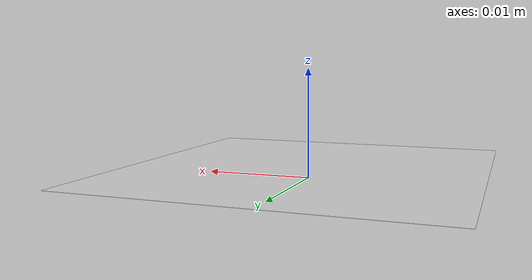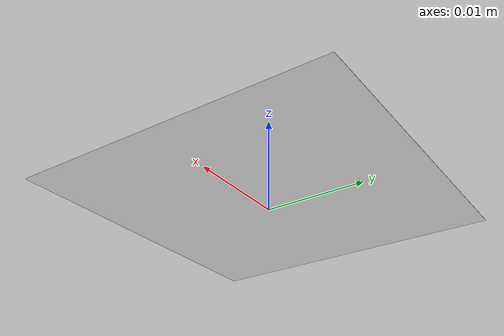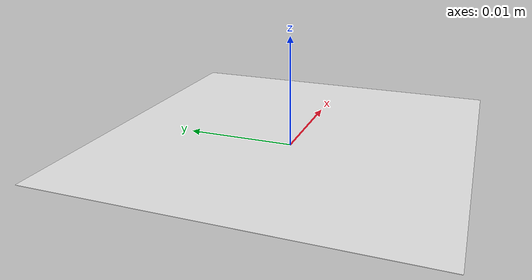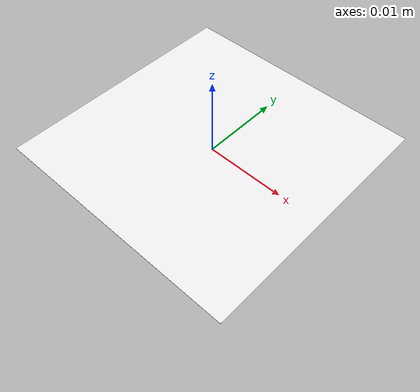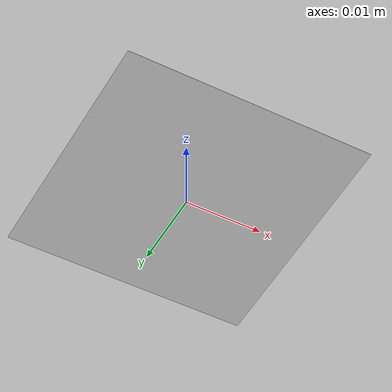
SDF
<?xml version="1.0"?>
<!-- Sample tag: 1 inch black square inside a 1.25 inch textured plane. -->
<sdf version="1.9">
    <model name="AprilTag36h11">
        <static>true</static>
        <pose>0 0 0.001 0 0 0</pose>
        <link name="link">
            <visual name="visual">
                <geometry>
                    <plane><normal>0 0 1</normal><size>0.03175 0.03175</size></plane>
                </geometry>
                <material>
                    <ambient>1 1 1 1</ambient>
                    <diffuse>1 1 1 1</diffuse>
                    <specular>0.1 0.1 0.1 1</specular>
                    <pbr><metal>
                        <albedo_map>model://AprilTag36h11/tag36h11_00010.png</albedo_map>
                        <metalness>0</metalness>
                        <roughness>0.9</roughness>
                    </metal></pbr>
                </material>
            </visual>
        </link>
    </model>
</sdf>
